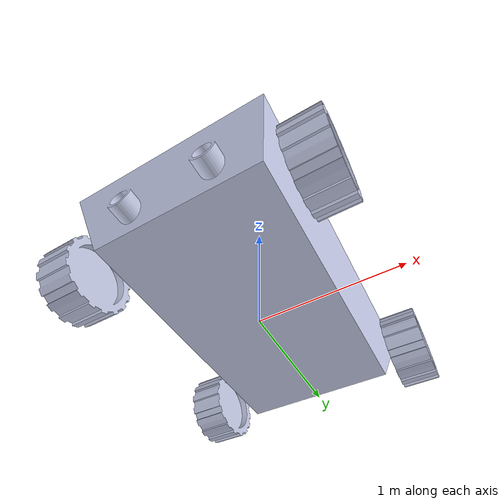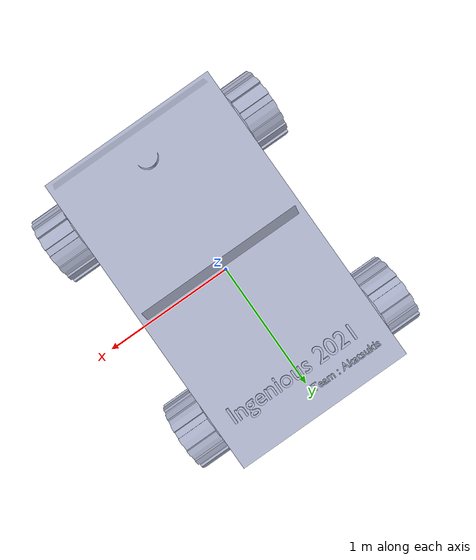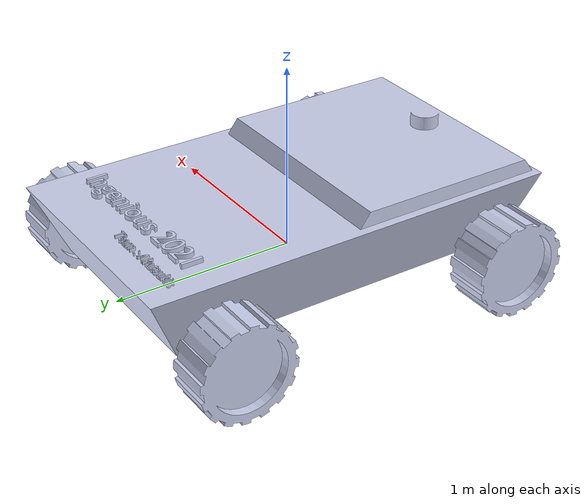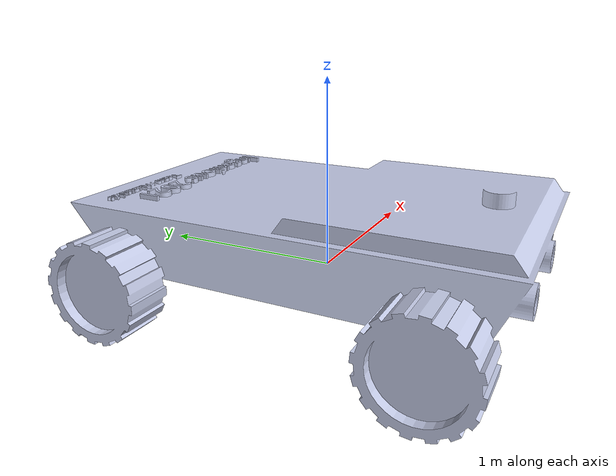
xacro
<?xml version="1.0"?>

<robot name="obito" xmlns:xacro="http://www.ros.org/wiki/xacro">
<xacro:include filename="$(find akatsuki_description)/urdf/bot.gazebo" />

<!--   base of the robot -->

  <link
    name="obito_base">
    <inertial>
      <origin
   xyz="0 0.0 0.12"
        rpy="0 0 3.142" />
      <mass
        value="28" />
         <inertia ixx="0.356" ixy="0" ixz="0" iyy="0.9443" iyz="0" izz="1.008"/>
    </inertial>
    <visual>
      <origin
        xyz="0 0 0"
        rpy="0 0 0" />
      <geometry>
        <mesh
          filename="package://akatsuki_description/meshes/stl/only_chassis.stl" />
      </geometry>
      <material
        name="">
        <color
          rgba="0.79216 0.81961 0.93333 1" />
      </material>
    </visual>
    <collision>
    <origin
        xyz="0 0.0 0.12"
        rpy="0 0 0" />
      <geometry>
     <box size="0.585 0.30 0.25"/>
      </geometry>
    </collision>
  </link>

 <link
    name="logo_link">
    <inertial>
      <origin
        xyz="0 0 0"
        rpy="0 0 0" />
      <mass
        value="0.001" />
          <inertia ixx="0" ixy="0" ixz="0" iyy="0.0" iyz="0" izz="0.00"/>
    </inertial>
    <visual>
      <origin
        xyz="0 0 0"
        rpy="0 0 0" />
      <geometry>
        <mesh
          filename="package://akatsuki_description/meshes/stl/logo.stl"/>
      </geometry>
      <material
        name="">
        <color
          rgba="0.79216 0.81961 0.93333 1" />
      </material>
    </visual>
  </link>
  <joint name="logo_joint" type="fixed">
    <origin
      xyz="0 0 0"
      rpy="0 0 0" />
    <parent
      link="obito_base" />
    <child
      link="logo_link" />
  </joint>

<!-- front wheel left -->

  <link
    name="front_wheel_left">
    <inertial>
      <origin
        xyz="0 0 0"
        rpy="0 0 0" />
      <mass
        value="0.7" />
          <inertia ixx="0.003" ixy="0" ixz="0" iyy="0.0030" iyz="0" izz="0.0035"/>
    </inertial>
    <visual>
      <origin
        xyz="0 0 0"
        rpy="0 0 0" />
      <geometry>
        <mesh
          filename="package://akatsuki_description/meshes/stl/wheel.stl" scale="0.1 0.1 0.1"/>
      </geometry>
      <material
        name="">
        <color
          rgba="0.79216 0.81961 0.93333 1" />
      </material>
    </visual>
    <collision>
      <origin
         xyz="0 0.025 0"
        rpy="0 0 0" />
      <geometry>
          <mesh
          filename="package://akatsuki_description/meshes/stl/wheel.stl" scale="0.1 0.1 0.1"/>
      </geometry>
    </collision>
  </link>
  <joint
    name="front_wheel_left_joint"
    type="continuous">
    <origin
      xyz="0.8 -0.8 0.04"
      rpy="0 0 0" />
    <parent
      link="obito_base" />
    <child
      link="front_wheel_left" />
    <axis
      xyz="1 0 0" />
  </joint>

<!-- rear wheel left -->
  <link
    name="rear_wheel_left">
    <inertial>
      <origin
        xyz="0 0 0"
        rpy="0 0 0" />
      <mass
        value="0.7" />
           <inertia ixx="0.003" ixy="0" ixz="0" iyy="0.0030" iyz="0" izz="0.0035"/>
    </inertial>
    <visual>
      <origin
        xyz="0 0 0"
        rpy="0 0 0" />
      <geometry>
        <mesh
          filename="package://akatsuki_description/meshes/stl/wheel.stl" scale="0.1 0.1 0.1"/>
      </geometry>
      <material
        name="">
        <color
          rgba="0.79216 0.81961 0.93333 1" />
      </material>
    </visual>
    <collision>
      <origin
         xyz="0 0.025 0"
        rpy="0 0 0" />
      <geometry>
         <mesh
          filename="package://akatsuki_description/meshes/stl/wheel.stl" scale="0.1 0.1 0.1"/>
      </geometry>
    </collision>
  </link>
  <joint
    name="rear_wheel_left_joint"
    type="continuous">
    <origin
      xyz="0.8 0.8 0.04"
      rpy="0 0 0" />
    <parent
      link="obito_base" />
    <child
      link="rear_wheel_left" />
    <axis
      xyz="1 0 0" />
  </joint>

<!--   front wheel right -->
  <link
    name="front_wheel_right">
    <inertial>
      <origin
        xyz="0 0 0"
        rpy="0 0 0" />
      <mass
        value="0.7" />
           <inertia ixx="0.003" ixy="0" ixz="0" iyy="0.0030" iyz="0" izz="0.0035"/>
    </inertial>
    <visual>
      <origin
        xyz="0 0 0"
        rpy="0 0 0" />
      <geometry>
        <mesh
          filename="package://akatsuki_description/meshes/stl/wheel.stl" scale="0.1 0.1 0.1"/>
      </geometry>
      <material
        name="">
        <color
          rgba="0.79216 0.81961 0.93333 1" />
      </material>
    </visual>
   <collision>
      <origin
         xyz="0 0.025 0"
        rpy="0 0 0" />
      <geometry>
          <mesh
          filename="package://akatsuki_description/meshes/stl/wheel.stl" scale="0.1 0.1 0.1"/>
      </geometry>
    </collision>
  </link>
  <joint
    name="front_wheel_right_joint"
    type="continuous">
    <origin
      xyz="-0.8 -0.8 0.04"
      rpy="0 0 0" />
    <parent
      link="obito_base" />
    <child
      link="front_wheel_right" />
    <axis
      xyz="1 0 0" />
  </joint>

<!--   rear wheel right -->
  <link
    name="rear_wheel_right">
    <inertial>
      <origin
        xyz="0 0 0"
        rpy="0 0 0" />
      <mass
        value="0.7" />
        <inertia ixx="0.003" ixy="0" ixz="0" iyy="0.0030" iyz="0" izz="0.0035"/>
    </inertial>
    <visual>
      <origin
        xyz="0 0 0"
        rpy="0 0 0" />
      <geometry>
        <mesh
          filename="package://akatsuki_description/meshes/stl/wheel.stl" scale="0.1 0.1 0.1"/>
      </geometry>
      <material
        name="">
        <color
          rgba="0.79216 0.81961 0.93333 1" />
      </material>
    </visual>
   <collision>
      <origin
         xyz="0 0.025 0"
        rpy="0 0 0" />
      <geometry>
          <mesh
          filename="package://akatsuki_description/meshes/stl/wheel.stl" scale="0.1 0.1 0.1"/>
      </geometry>
    </collision>
  </link>
  <joint
    name="rear_wheel_right_joint"
    type="continuous">
    <origin
      xyz="-0.8 0.8 0.04"
      rpy="0 0 0" />
    <parent
      link="obito_base" />
    <child
      link="rear_wheel_right" />
    <axis
      xyz="1 0 0" />
  </joint>

<joint name="bot_cam_joint" type="fixed">
    <axis xyz="0 0 0" />
    <origin xyz="0 -1.05 0.1" rpy="0 0 0"/>
    <parent link="obito_base"/>
    <child link="camera_link"/>
  </joint>

  <link name="camera_link">
    <collision>
      <origin xyz="0 0 0" rpy="0 0 0"/>
      <geometry>0
        <box size="0.001 0.001 0.001"/>
      </geometry>
    </collision>

    <visual>
      <origin xyz="0 0 0" rpy="1.5707 0 1.5707"/>
      <geometry>
        <box size="0.001 0.001 0.001"/>
      </geometry>
    </visual>

    <inertial>
      <mass value="1e-5" />
      <origin xyz="0 0 0" rpy="0 0 0"/>
      <inertia ixx="0" ixy="0" ixz="0" iyy="0" iyz="0" izz="0" />
    </inertial>
  </link>

  <joint name="camera_color_joint" type="fixed">
    <origin xyz="0 0 0" rpy="-1.57 0 1.57"/>
    <parent link="camera_link"/>
    <child link="camera_rgb_frame"/>
  </joint>

  <link name="camera_rgb_frame">
  </link>

  <joint name="camera_depth_joint" type="fixed">
    <origin xyz="0 0 0" rpy="-1.57 0 -1.57"/>
    <parent link="camera_link"/>
    <child link="camera_depth_frame"/>
  </joint>

    <link name="camera_depth_frame">
  </link>

<link name="laser">
    <origin rpy="0 0 0" xyz="0 0 0"/>
    <inertial>
      <mass value="0.09"/>
      <inertia ixx="0" ixy="0" ixz="0" iyy="0" iyz="0" izz="0"/>
    </inertial>
    <collision>
      <origin rpy="0 0 0" xyz="0 0 0"/>
      <geometry>
        <cylinder length="0.040" radius="0.030"/>
      </geometry>
    </collision>
    <visual>
      <origin rpy="0 0 0" xyz="0 0 0"/>
      <geometry>
        <cylinder length="0.040" radius="0.030"/>
      </geometry>
    </visual>
  </link>

  <joint name="lidar_joint" type="fixed">
    <axis xyz="0 1 0"/>
    <origin xyz="0 -0.9 0.5"
      rpy="0 0 -1.571" />

    <parent link="obito_base"/>
    <child link="laser"/>
    <axis rpy="0 0 0" xyz="0. 0 0.178"/>
  </joint>

</robot>
